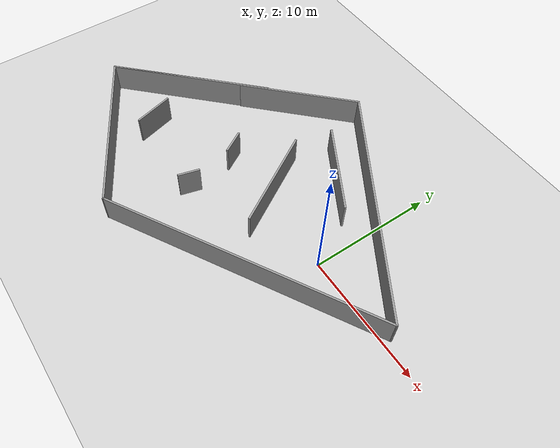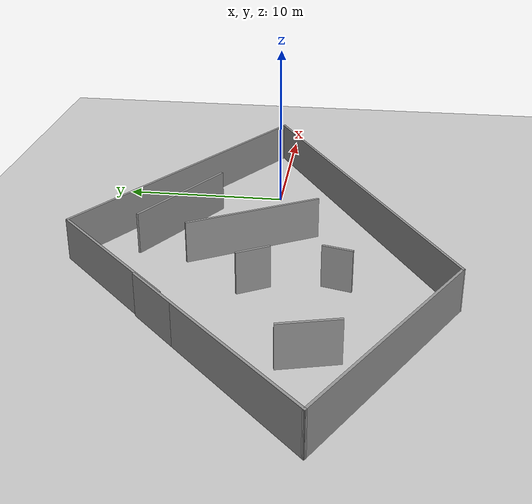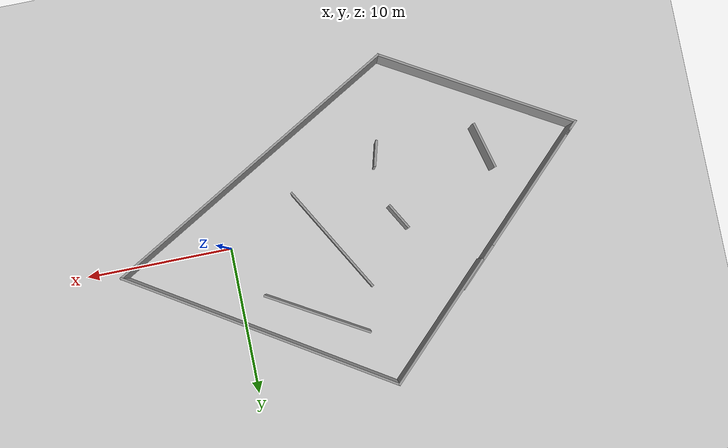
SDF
<sdf version="1.7">
 <world name="default">
  <light name="sun" type="directional">
   <pose>0 0 10 0 -0 0</pose>
   <diffuse>0.8 0.8 0.8 1</diffuse>
   <specular>0.2 0.2 0.2 1</specular>
   <attenuation>
    <range>1000</range>
    <constant>0.9</constant>
    <linear>0.01</linear>
    <quadratic>0.001</quadratic>
   </attenuation>
   <direction>-0.5 0.1 -0.9</direction>
   <spot><inner_angle>0</inner_angle><outer_angle>0</outer_angle><falloff>0</falloff></spot>
  </light>
  <model name="ground_plane">
   <static>1</static>
   <link name="link">
    <collision name="collision">
     <geometry><plane><normal>0 0 1</normal><size>100 100</size></plane></geometry>
     <surface>
      <contact><collide_bitmask>65535</collide_bitmask></contact>
      <friction><ode><mu>100</mu><mu2>50</mu2></ode></friction>
     </surface>
    </collision>
    <visual name="visual">
     <cast_shadows>0</cast_shadows>
     <geometry><plane><normal>0 0 1</normal><size>100 100</size></plane></geometry>
     <material>
      <script><uri>file://media/materials/scripts/gazebo.material</uri><name>Gazebo/Grey</name></script>
     </material>
    </visual>
   </link>
  </model>
  <gravity>0 0 -9.8</gravity>
  <magnetic_field>6e-06 2.3e-05 -4.2e-05</magnetic_field>
  <atmosphere type="adiabatic"/>
  <physics type="ode">
   <max_step_size>0.001</max_step_size>
   <real_time_factor>1</real_time_factor>
   <real_time_update_rate>1000</real_time_update_rate>
  </physics>
  <scene><ambient>0.4 0.4 0.4 1</ambient><background>0.7 0.7 0.7 1</background><shadows>1</shadows></scene>
  <audio><device>default</device></audio>
  <spherical_coordinates>
   <surface_model>EARTH_WGS84</surface_model>
   <latitude_deg>0</latitude_deg>
   <longitude_deg>0</longitude_deg>
   <elevation>0</elevation>
   <heading_deg>0</heading_deg>
  </spherical_coordinates>
  <model name="testworld2">
   <pose>-8.46875 0.147856 0 0 -0 0</pose>
   <link name="Wall_17">
    <collision name="Wall_17_Collision">
     <geometry><box><size>13.5 0.15 2.5</size></box></geometry>
     <pose>0 0 1.25 0 -0 0</pose>
    </collision>
    <visual name="Wall_17_Visual">
     <pose>0 0 1.25 0 -0 0</pose>
     <geometry><box><size>13.5 0.15 2.5</size></box></geometry>
     <material>
      <script><uri>file://media/materials/scripts/gazebo.material</uri><name>Gazebo/Grey</name></script>
      <ambient>1 1 1 1</ambient>
     </material>
     <meta><layer>0</layer></meta>
    </visual>
    <pose>-11.062 0.79213 0 0 -0 -2.35619</pose>
   </link>
   <link name="Wall_18">
    <collision name="Wall_18_Collision">
     <geometry><box><size>10 0.15 2.5</size></box></geometry>
     <pose>0 0 1.25 0 -0 0</pose>
    </collision>
    <visual name="Wall_18_Visual">
     <pose>0 0 1.25 0 -0 0</pose>
     <geometry><box><size>10 0.15 2.5</size></box></geometry>
     <material>
      <script><uri>file://media/materials/scripts/gazebo.material</uri><name>Gazebo/Grey</name></script>
      <ambient>1 1 1 1</ambient>
     </material>
     <meta><layer>0</layer></meta>
    </visual>
    <pose>-12.2995 -0.445307 0 0 -0 0.785398</pose>
   </link>
   <link name="Wall_20">
    <collision name="Wall_20_Collision">
     <geometry><box><size>14 0.15 2.5</size></box></geometry>
     <pose>0 0 1.25 0 -0 0</pose>
    </collision>
    <visual name="Wall_20_Visual">
     <pose>0 0 1.25 0 -0 0</pose>
     <geometry><box><size>14 0.15 2.5</size></box></geometry>
     <material>
      <script><uri>file://media/materials/scripts/gazebo.material</uri><name>Gazebo/Grey</name></script>
      <ambient>1 1 1 1</ambient>
     </material>
     <meta><layer>0</layer></meta>
    </visual>
    <pose>-9.78472 -7.39031 0 0 -0 -0.523599</pose>
   </link>
   <link name="Wall_21">
    <collision name="Wall_21_Collision">
     <geometry><box><size>22.75 0.15 2.5</size></box></geometry>
     <pose>0 0 1.25 0 -0 0</pose>
    </collision>
    <visual name="Wall_21_Visual">
     <pose>0 0 1.25 0 -0 0</pose>
     <geometry><box><size>22.75 0.15 2.5</size></box></geometry>
     <material>
      <script><uri>file://media/materials/scripts/gazebo.material</uri><name>Gazebo/Grey</name></script>
      <ambient>1 1 1 1</ambient>
     </material>
     <meta><layer>0</layer></meta>
    </visual>
    <pose>5.99859 -5.20281 0 0 -0 0.523599</pose>
   </link>
   <link name="Wall_22">
    <collision name="Wall_22_Collision">
     <geometry><box><size>19.7824 0.15 2.5</size></box></geometry>
     <pose>0 0 1.25 0 -0 0</pose>
    </collision>
    <visual name="Wall_22_Visual">
     <pose>0 0 1.25 0 -0 0</pose>
     <geometry><box><size>19.7824 0.15 2.5</size></box></geometry>
     <material>
      <script><uri>file://media/materials/scripts/gazebo.material</uri><name>Gazebo/Grey</name></script>
      <ambient>1 1 1 1</ambient>
     </material>
     <meta><layer>0</layer></meta>
    </visual>
    <pose>7.45955 5.64819 0 0 -0 2.58318</pose>
   </link>
   <link name="Wall_23">
    <collision name="Wall_23_Collision">
     <geometry><box><size>10 0.15 2.5</size></box></geometry>
     <pose>0 0 1.25 0 -0 0</pose>
    </collision>
    <visual name="Wall_23_Visual">
     <pose>0 0 1.25 0 -0 0</pose>
     <geometry><box><size>10 0.15 2.5</size></box></geometry>
     <material>
      <script><uri>file://media/materials/scripts/gazebo.material</uri><name>Gazebo/Grey</name></script>
      <ambient>1 1 1 1</ambient>
     </material>
     <meta><layer>0</layer></meta>
    </visual>
    <pose>-4.3946 7.36669 0 0 -0 -2.35619</pose>
   </link>
   <link name="Wall_25">
    <collision name="Wall_25_Collision">
     <geometry><box><size>3.25 0.15 2.5</size></box></geometry>
     <pose>0 0 1.25 0 -0 0</pose>
    </collision>
    <visual name="Wall_25_Visual">
     <pose>0 0 1.25 0 -0 0</pose>
     <geometry><box><size>3.25 0.15 2.5</size></box></geometry>
     <material>
      <script><uri>file://media/materials/scripts/gazebo.material</uri><name>Gazebo/Grey</name></script>
      <ambient>1 1 1 1</ambient>
     </material>
     <meta><layer>0</layer></meta>
    </visual>
    <pose>-9.54247 -3.54724 0 0 -0 -1.309</pose>
   </link>
   <link name="Wall_27">
    <collision name="Wall_27_Collision">
     <geometry><box><size>7.5 0.15 2.5</size></box></geometry>
     <pose>0 0 1.25 0 -0 0</pose>
    </collision>
    <visual name="Wall_27_Visual">
     <pose>0 0 1.25 0 -0 0</pose>
     <geometry><box><size>7.5 0.15 2.5</size></box></geometry>
     <material>
      <script><uri>file://media/materials/scripts/gazebo.material</uri><name>Gazebo/Grey</name></script>
      <ambient>1 1 1 1</ambient>
     </material>
     <meta><layer>0</layer></meta>
    </visual>
    <pose>3.51063 5.27028 0 0 -0 -0.523599</pose>
   </link>
   <link name="Wall_29">
    <collision name="Wall_29_Collision">
     <geometry><box><size>2 0.15 2.5</size></box></geometry>
     <pose>0 0 1.25 0 -0 0</pose>
    </collision>
    <visual name="Wall_29_Visual">
     <pose>0 0 1.25 0 -0 0</pose>
     <geometry><box><size>2 0.15 2.5</size></box></geometry>
     <material>
      <script><uri>file://media/materials/scripts/gazebo.material</uri><name>Gazebo/Grey</name></script>
      <ambient>1 1 1 1</ambient>
     </material>
     <meta><layer>0</layer></meta>
    </visual>
    <pose>-3.0459 -0.004778 0 0 -0 -1.0472</pose>
   </link>
   <link name="Wall_31">
    <collision name="Wall_31_Collision">
     <geometry><box><size>1.75 0.15 2.5</size></box></geometry>
     <pose>0 0 1.25 0 -0 0</pose>
    </collision>
    <visual name="Wall_31_Visual">
     <pose>0 0 1.25 0 -0 0</pose>
     <geometry><box><size>1.75 0.15 2.5</size></box></geometry>
     <material>
      <script><uri>file://media/materials/scripts/gazebo.material</uri><name>Gazebo/Grey</name></script>
      <ambient>1 1 1 1</ambient>
     </material>
     <meta><layer>0</layer></meta>
    </visual>
    <pose>-2.35416 -4.43161 0 0 -0 -1.8326</pose>
   </link>
   <link name="Wall_33">
    <collision name="Wall_33_Collision">
     <geometry><box><size>8.25 0.15 2.5</size></box></geometry>
     <pose>0 0 1.25 0 -0 0</pose>
    </collision>
    <visual name="Wall_33_Visual">
     <pose>0 0 1.25 0 -0 0</pose>
     <geometry><box><size>8.25 0.15 2.5</size></box></geometry>
     <material>
      <script><uri>file://media/materials/scripts/gazebo.material</uri><name>Gazebo/Grey</name></script>
      <ambient>1 1 1 1</ambient>
     </material>
     <meta><layer>0</layer></meta>
    </visual>
    <pose>1.61046 0.630265 0 0 -0 -1.0472</pose>
   </link>
   <static>1</static>
  </model>
 </world>
</sdf>
